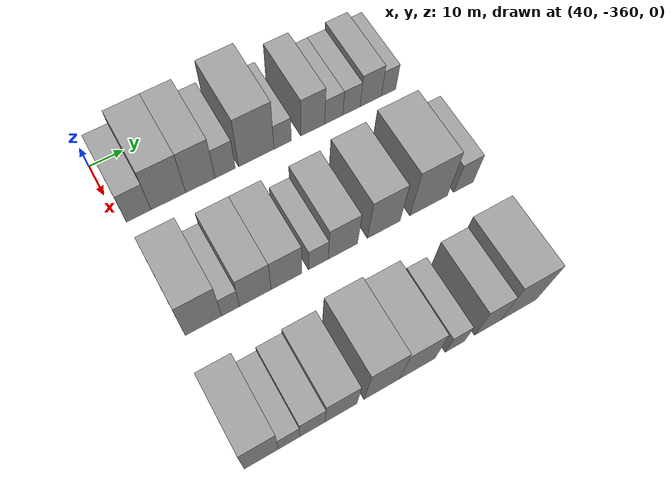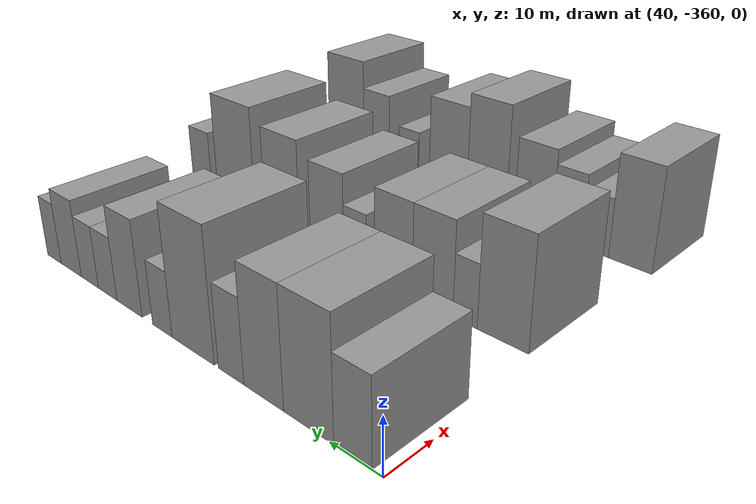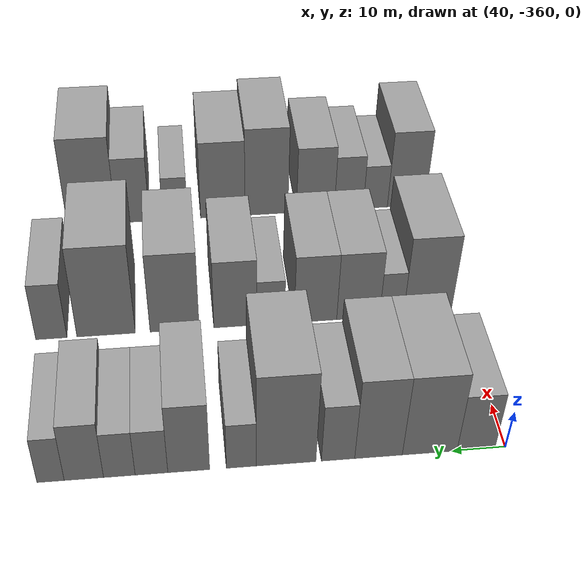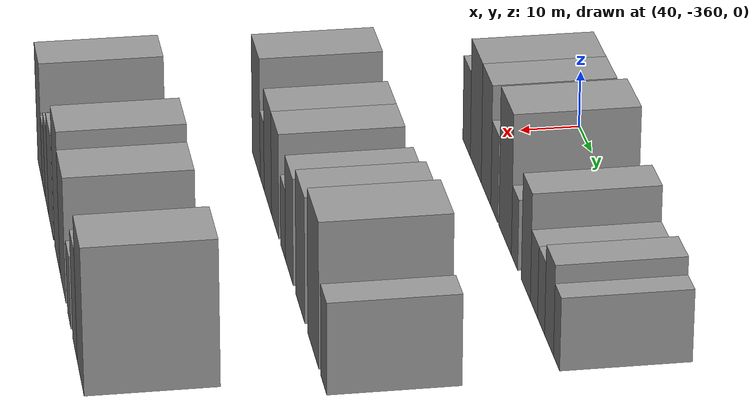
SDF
<sdf version="1.6">
 <world name="default">
  <model name="building_1">
   <static>1</static>
   <pose>50.0000 -354.4526 0 0.000000 0.000000 0.000000</pose>
   <link name="link">
    <pose>0 0 7.50 0 0 0</pose>
    <collision name="collision"><geometry><box><size>20.0000 7.0948 15.0000</size></box></geometry></collision>
    <visual name="visual">
     <cast_shadows>0</cast_shadows>
     <geometry><box><size>20.0000 7.0948 15.0000</size></box></geometry>
     <material>
      <script>
       <uri>model://grey_wall/materials/scripts</uri>
       <uri>model://grey_wall/materials/textures</uri>
       <name>vrc/grey_wall</name>
      </script>
     </material>
    </visual>
   </link>
  </model>
  <model name="building_2">
   <static>1</static>
   <pose>50.0000 -345.8358 0 0.000000 0.000000 0.000000</pose>
   <link name="link">
    <pose>0 0 10.50 0 0 0</pose>
    <collision name="collision"><geometry><box><size>20.0000 10.1390 21.0000</size></box></geometry></collision>
    <visual name="visual">
     <cast_shadows>0</cast_shadows>
     <geometry><box><size>20.0000 10.1390 21.0000</size></box></geometry>
     <material>
      <script>
       <uri>model://grey_wall/materials/scripts</uri>
       <uri>model://grey_wall/materials/textures</uri>
       <name>vrc/grey_wall</name>
      </script>
     </material>
    </visual>
   </link>
  </model>
  <model name="building_3">
   <static>1</static>
   <pose>50.0000 -336.3879 0 0.000000 0.000000 0.000000</pose>
   <link name="link">
    <pose>0 0 10.50 0 0 0</pose>
    <collision name="collision"><geometry><box><size>20.0000 8.7568 21.0000</size></box></geometry></collision>
    <visual name="visual">
     <cast_shadows>0</cast_shadows>
     <geometry><box><size>20.0000 8.7568 21.0000</size></box></geometry>
     <material>
      <script>
       <uri>model://grey_wall/materials/scripts</uri>
       <uri>model://grey_wall/materials/textures</uri>
       <name>vrc/grey_wall</name>
      </script>
     </material>
    </visual>
   </link>
  </model>
  <model name="building_4">
   <static>1</static>
   <pose>50.0000 -328.9606 0 0.000000 0.000000 0.000000</pose>
   <link name="link">
    <pose>0 0 7.50 0 0 0</pose>
    <collision name="collision"><geometry><box><size>20.0000 6.0978 15.0000</size></box></geometry></collision>
    <visual name="visual">
     <cast_shadows>0</cast_shadows>
     <geometry><box><size>20.0000 6.0978 15.0000</size></box></geometry>
     <material>
      <script>
       <uri>model://grey_wall/materials/scripts</uri>
       <uri>model://grey_wall/materials/textures</uri>
       <name>vrc/grey_wall</name>
      </script>
     </material>
    </visual>
   </link>
  </model>
  <model name="building_5">
   <static>1</static>
   <pose>50.0000 -319.4855 0 0.000000 0.000000 0.000000</pose>
   <link name="link">
    <pose>0 0 12.00 0 0 0</pose>
    <collision name="collision"><geometry><box><size>20.0000 10.8523 24.0000</size></box></geometry></collision>
    <visual name="visual">
     <cast_shadows>0</cast_shadows>
     <geometry><box><size>20.0000 10.8523 24.0000</size></box></geometry>
     <material>
      <script>
       <uri>model://grey_wall/materials/scripts</uri>
       <uri>model://grey_wall/materials/textures</uri>
       <name>vrc/grey_wall</name>
      </script>
     </material>
    </visual>
   </link>
  </model>
  <model name="building_6">
   <static>1</static>
   <pose>50.0000 -311.3605 0 0.000000 0.000000 0.000000</pose>
   <link name="link">
    <pose>0 0 6.00 0 0 0</pose>
    <collision name="collision"><geometry><box><size>20.0000 5.3977 12.0000</size></box></geometry></collision>
    <visual name="visual">
     <cast_shadows>0</cast_shadows>
     <geometry><box><size>20.0000 5.3977 12.0000</size></box></geometry>
     <material>
      <script>
       <uri>model://grey_wall/materials/scripts</uri>
       <uri>model://grey_wall/materials/textures</uri>
       <name>vrc/grey_wall</name>
      </script>
     </material>
    </visual>
   </link>
  </model>
  <model name="building_7">
   <static>1</static>
   <pose>50.0000 -301.9063 0 0.000000 0.000000 0.000000</pose>
   <link name="link">
    <pose>0 0 9.00 0 0 0</pose>
    <collision name="collision"><geometry><box><size>20.0000 7.5106 18.0000</size></box></geometry></collision>
    <visual name="visual">
     <cast_shadows>0</cast_shadows>
     <geometry><box><size>20.0000 7.5106 18.0000</size></box></geometry>
     <material>
      <script>
       <uri>model://grey_wall/materials/scripts</uri>
       <uri>model://grey_wall/materials/textures</uri>
       <name>vrc/grey_wall</name>
      </script>
     </material>
    </visual>
   </link>
  </model>
  <model name="building_8">
   <static>1</static>
   <pose>50.0000 -295.2323 0 0.000000 0.000000 0.000000</pose>
   <link name="link">
    <pose>0 0 6.00 0 0 0</pose>
    <collision name="collision"><geometry><box><size>20.0000 5.8375 12.0000</size></box></geometry></collision>
    <visual name="visual">
     <cast_shadows>0</cast_shadows>
     <geometry><box><size>20.0000 5.8375 12.0000</size></box></geometry>
     <material>
      <script>
       <uri>model://grey_wall/materials/scripts</uri>
       <uri>model://grey_wall/materials/textures</uri>
       <name>vrc/grey_wall</name>
      </script>
     </material>
    </visual>
   </link>
  </model>
  <model name="building_9">
   <static>1</static>
   <pose>50.0000 -289.4980 0 0.000000 0.000000 0.000000</pose>
   <link name="link">
    <pose>0 0 6.00 0 0 0</pose>
    <collision name="collision"><geometry><box><size>20.0000 5.6311 12.0000</size></box></geometry></collision>
    <visual name="visual">
     <cast_shadows>0</cast_shadows>
     <geometry><box><size>20.0000 5.6311 12.0000</size></box></geometry>
     <material>
      <script>
       <uri>model://grey_wall/materials/scripts</uri>
       <uri>model://grey_wall/materials/textures</uri>
       <name>vrc/grey_wall</name>
      </script>
     </material>
    </visual>
   </link>
  </model>
  <model name="building_10">
   <static>1</static>
   <pose>50.0000 -283.2031 0 0.000000 0.000000 0.000000</pose>
   <link name="link">
    <pose>0 0 7.50 0 0 0</pose>
    <collision name="collision"><geometry><box><size>20.0000 6.9587 15.0000</size></box></geometry></collision>
    <visual name="visual">
     <cast_shadows>0</cast_shadows>
     <geometry><box><size>20.0000 6.9587 15.0000</size></box></geometry>
     <material>
      <script>
       <uri>model://grey_wall/materials/scripts</uri>
       <uri>model://grey_wall/materials/textures</uri>
       <name>vrc/grey_wall</name>
      </script>
     </material>
    </visual>
   </link>
  </model>
  <model name="building_11">
   <static>1</static>
   <pose>50.0000 -277.3180 0 0.000000 0.000000 0.000000</pose>
   <link name="link">
    <pose>0 0 6.00 0 0 0</pose>
    <collision name="collision"><geometry><box><size>20.0000 4.8116 12.0000</size></box></geometry></collision>
    <visual name="visual">
     <cast_shadows>0</cast_shadows>
     <geometry><box><size>20.0000 4.8116 12.0000</size></box></geometry>
     <material>
      <script>
       <uri>model://grey_wall/materials/scripts</uri>
       <uri>model://grey_wall/materials/textures</uri>
       <name>vrc/grey_wall</name>
      </script>
     </material>
    </visual>
   </link>
  </model>
  <model name="building_84">
   <static>1</static>
   <pose>85.0000 -352.9696 0 0.000000 0.000000 0.000000</pose>
   <link name="link">
    <pose>0 0 10.50 0 0 0</pose>
    <collision name="collision"><geometry><box><size>20.0000 10.0607 21.0000</size></box></geometry></collision>
    <visual name="visual">
     <cast_shadows>0</cast_shadows>
     <geometry><box><size>20.0000 10.0607 21.0000</size></box></geometry>
     <material>
      <script>
       <uri>model://grey_wall/materials/scripts</uri>
       <uri>model://grey_wall/materials/textures</uri>
       <name>vrc/grey_wall</name>
      </script>
     </material>
    </visual>
   </link>
  </model>
  <model name="building_85">
   <static>1</static>
   <pose>85.0000 -345.4326 0 0.000000 0.000000 0.000000</pose>
   <link name="link">
    <pose>0 0 6.00 0 0 0</pose>
    <collision name="collision"><geometry><box><size>20.0000 5.0135 12.0000</size></box></geometry></collision>
    <visual name="visual">
     <cast_shadows>0</cast_shadows>
     <geometry><box><size>20.0000 5.0135 12.0000</size></box></geometry>
     <material>
      <script>
       <uri>model://grey_wall/materials/scripts</uri>
       <uri>model://grey_wall/materials/textures</uri>
       <name>vrc/grey_wall</name>
      </script>
     </material>
    </visual>
   </link>
  </model>
  <model name="building_86">
   <static>1</static>
   <pose>85.0000 -338.4584 0 0.000000 0.000000 0.000000</pose>
   <link name="link">
    <pose>0 0 9.00 0 0 0</pose>
    <collision name="collision"><geometry><box><size>20.0000 8.9349 18.0000</size></box></geometry></collision>
    <visual name="visual">
     <cast_shadows>0</cast_shadows>
     <geometry><box><size>20.0000 8.9349 18.0000</size></box></geometry>
     <material>
      <script>
       <uri>model://grey_wall/materials/scripts</uri>
       <uri>model://grey_wall/materials/textures</uri>
       <name>vrc/grey_wall</name>
      </script>
     </material>
    </visual>
   </link>
  </model>
  <model name="building_87">
   <static>1</static>
   <pose>85.0000 -329.5762 0 0.000000 0.000000 0.000000</pose>
   <link name="link">
    <pose>0 0 9.00 0 0 0</pose>
    <collision name="collision"><geometry><box><size>20.0000 8.8293 18.0000</size></box></geometry></collision>
    <visual name="visual">
     <cast_shadows>0</cast_shadows>
     <geometry><box><size>20.0000 8.8293 18.0000</size></box></geometry>
     <material>
      <script>
       <uri>model://grey_wall/materials/scripts</uri>
       <uri>model://grey_wall/materials/textures</uri>
       <name>vrc/grey_wall</name>
      </script>
     </material>
    </visual>
   </link>
  </model>
  <model name="building_88">
   <static>1</static>
   <pose>85.0000 -320.2946 0 0.000000 0.000000 0.000000</pose>
   <link name="link">
    <pose>0 0 6.00 0 0 0</pose>
    <collision name="collision"><geometry><box><size>20.0000 5.7340 12.0000</size></box></geometry></collision>
    <visual name="visual">
     <cast_shadows>0</cast_shadows>
     <geometry><box><size>20.0000 5.7340 12.0000</size></box></geometry>
     <material>
      <script>
       <uri>model://grey_wall/materials/scripts</uri>
       <uri>model://grey_wall/materials/textures</uri>
       <name>vrc/grey_wall</name>
      </script>
     </material>
    </visual>
   </link>
  </model>
  <model name="building_89">
   <static>1</static>
   <pose>85.0000 -313.0156 0 0.000000 0.000000 0.000000</pose>
   <link name="link">
    <pose>0 0 9.00 0 0 0</pose>
    <collision name="collision"><geometry><box><size>20.0000 8.8241 18.0000</size></box></geometry></collision>
    <visual name="visual">
     <cast_shadows>0</cast_shadows>
     <geometry><box><size>20.0000 8.8241 18.0000</size></box></geometry>
     <material>
      <script>
       <uri>model://grey_wall/materials/scripts</uri>
       <uri>model://grey_wall/materials/textures</uri>
       <name>vrc/grey_wall</name>
      </script>
     </material>
    </visual>
   </link>
  </model>
  <model name="building_90">
   <static>1</static>
   <pose>85.0000 -300.6014 0 0.000000 0.000000 0.000000</pose>
   <link name="link">
    <pose>0 0 10.50 0 0 0</pose>
    <collision name="collision"><geometry><box><size>20.0000 10.0043 21.0000</size></box></geometry></collision>
    <visual name="visual">
     <cast_shadows>0</cast_shadows>
     <geometry><box><size>20.0000 10.0043 21.0000</size></box></geometry>
     <material>
      <script>
       <uri>model://grey_wall/materials/scripts</uri>
       <uri>model://grey_wall/materials/textures</uri>
       <name>vrc/grey_wall</name>
      </script>
     </material>
    </visual>
   </link>
  </model>
  <model name="building_91">
   <static>1</static>
   <pose>85.0000 -286.6879 0 0.000000 0.000000 0.000000</pose>
   <link name="link">
    <pose>0 0 12.00 0 0 0</pose>
    <collision name="collision"><geometry><box><size>20.0000 11.8227 24.0000</size></box></geometry></collision>
    <visual name="visual">
     <cast_shadows>0</cast_shadows>
     <geometry><box><size>20.0000 11.8227 24.0000</size></box></geometry>
     <material>
      <script>
       <uri>model://grey_wall/materials/scripts</uri>
       <uri>model://grey_wall/materials/textures</uri>
       <name>vrc/grey_wall</name>
      </script>
     </material>
    </visual>
   </link>
  </model>
  <model name="building_92">
   <static>1</static>
   <pose>85.0000 -275.6431 0 0.000000 0.000000 0.000000</pose>
   <link name="link">
    <pose>0 0 7.50 0 0 0</pose>
    <collision name="collision"><geometry><box><size>20.0000 6.2668 15.0000</size></box></geometry></collision>
    <visual name="visual">
     <cast_shadows>0</cast_shadows>
     <geometry><box><size>20.0000 6.2668 15.0000</size></box></geometry>
     <material>
      <script>
       <uri>model://grey_wall/materials/scripts</uri>
       <uri>model://grey_wall/materials/textures</uri>
       <name>vrc/grey_wall</name>
      </script>
     </material>
    </visual>
   </link>
  </model>
  <model name="building_161">
   <static>1</static>
   <pose>120.0000 -355.5740 0 0.000000 0.000000 0.000000</pose>
   <link name="link">
    <pose>0 0 10.50 0 0 0</pose>
    <collision name="collision"><geometry><box><size>20.0000 8.8520 21.0000</size></box></geometry></collision>
    <visual name="visual">
     <cast_shadows>0</cast_shadows>
     <geometry><box><size>20.0000 8.8520 21.0000</size></box></geometry>
     <material>
      <script>
       <uri>model://grey_wall/materials/scripts</uri>
       <uri>model://grey_wall/materials/textures</uri>
       <name>vrc/grey_wall</name>
      </script>
     </material>
    </visual>
   </link>
  </model>
  <model name="building_162">
   <static>1</static>
   <pose>120.0000 -348.3107 0 0.000000 0.000000 0.000000</pose>
   <link name="link">
    <pose>0 0 6.00 0 0 0</pose>
    <collision name="collision"><geometry><box><size>20.0000 5.6745 12.0000</size></box></geometry></collision>
    <visual name="visual">
     <cast_shadows>0</cast_shadows>
     <geometry><box><size>20.0000 5.6745 12.0000</size></box></geometry>
     <material>
      <script>
       <uri>model://grey_wall/materials/scripts</uri>
       <uri>model://grey_wall/materials/textures</uri>
       <name>vrc/grey_wall</name>
      </script>
     </material>
    </visual>
   </link>
  </model>
  <model name="building_163">
   <static>1</static>
   <pose>120.0000 -342.1021 0 0.000000 0.000000 0.000000</pose>
   <link name="link">
    <pose>0 0 7.50 0 0 0</pose>
    <collision name="collision"><geometry><box><size>20.0000 6.7426 15.0000</size></box></geometry></collision>
    <visual name="visual">
     <cast_shadows>0</cast_shadows>
     <geometry><box><size>20.0000 6.7426 15.0000</size></box></geometry>
     <material>
      <script>
       <uri>model://grey_wall/materials/scripts</uri>
       <uri>model://grey_wall/materials/textures</uri>
       <name>vrc/grey_wall</name>
      </script>
     </material>
    </visual>
   </link>
  </model>
  <model name="building_164">
   <static>1</static>
   <pose>120.0000 -334.3185 0 0.000000 0.000000 0.000000</pose>
   <link name="link">
    <pose>0 0 9.00 0 0 0</pose>
    <collision name="collision"><geometry><box><size>20.0000 8.8245 18.0000</size></box></geometry></collision>
    <visual name="visual">
     <cast_shadows>0</cast_shadows>
     <geometry><box><size>20.0000 8.8245 18.0000</size></box></geometry>
     <material>
      <script>
       <uri>model://grey_wall/materials/scripts</uri>
       <uri>model://grey_wall/materials/textures</uri>
       <name>vrc/grey_wall</name>
      </script>
     </material>
    </visual>
   </link>
  </model>
  <model name="building_165">
   <static>1</static>
   <pose>120.0000 -322.9390 0 0.000000 0.000000 0.000000</pose>
   <link name="link">
    <pose>0 0 12.00 0 0 0</pose>
    <collision name="collision"><geometry><box><size>20.0000 9.9346 24.0000</size></box></geometry></collision>
    <visual name="visual">
     <cast_shadows>0</cast_shadows>
     <geometry><box><size>20.0000 9.9346 24.0000</size></box></geometry>
     <material>
      <script>
       <uri>model://grey_wall/materials/scripts</uri>
       <uri>model://grey_wall/materials/textures</uri>
       <name>vrc/grey_wall</name>
      </script>
     </material>
    </visual>
   </link>
  </model>
  <model name="building_166">
   <static>1</static>
   <pose>120.0000 -312.8669 0 0.000000 0.000000 0.000000</pose>
   <link name="link">
    <pose>0 0 10.50 0 0 0</pose>
    <collision name="collision"><geometry><box><size>20.0000 10.2096 21.0000</size></box></geometry></collision>
    <visual name="visual">
     <cast_shadows>0</cast_shadows>
     <geometry><box><size>20.0000 10.2096 21.0000</size></box></geometry>
     <material>
      <script>
       <uri>model://grey_wall/materials/scripts</uri>
       <uri>model://grey_wall/materials/textures</uri>
       <name>vrc/grey_wall</name>
      </script>
     </material>
    </visual>
   </link>
  </model>
  <model name="building_167">
   <static>1</static>
   <pose>120.0000 -301.9362 0 0.000000 0.000000 0.000000</pose>
   <link name="link">
    <pose>0 0 6.00 0 0 0</pose>
    <collision name="collision"><geometry><box><size>20.0000 5.6518 12.0000</size></box></geometry></collision>
    <visual name="visual">
     <cast_shadows>0</cast_shadows>
     <geometry><box><size>20.0000 5.6518 12.0000</size></box></geometry>
     <material>
      <script>
       <uri>model://grey_wall/materials/scripts</uri>
       <uri>model://grey_wall/materials/textures</uri>
       <name>vrc/grey_wall</name>
      </script>
     </material>
    </visual>
   </link>
  </model>
  <model name="building_168">
   <static>1</static>
   <pose>120.0000 -292.2878 0 0.000000 0.000000 0.000000</pose>
   <link name="link">
    <pose>0 0 9.00 0 0 0</pose>
    <collision name="collision"><geometry><box><size>20.0000 7.6451 18.0000</size></box></geometry></collision>
    <visual name="visual">
     <cast_shadows>0</cast_shadows>
     <geometry><box><size>20.0000 7.6451 18.0000</size></box></geometry>
     <material>
      <script>
       <uri>model://grey_wall/materials/scripts</uri>
       <uri>model://grey_wall/materials/textures</uri>
       <name>vrc/grey_wall</name>
      </script>
     </material>
    </visual>
   </link>
  </model>
  <model name="building_169">
   <static>1</static>
   <pose>120.0000 -282.9380 0 0.000000 0.000000 0.000000</pose>
   <link name="link">
    <pose>0 0 12.00 0 0 0</pose>
    <collision name="collision"><geometry><box><size>20.0000 11.0545 24.0000</size></box></geometry></collision>
    <visual name="visual">
     <cast_shadows>0</cast_shadows>
     <geometry><box><size>20.0000 11.0545 24.0000</size></box></geometry>
     <material>
      <script>
       <uri>model://grey_wall/materials/scripts</uri>
       <uri>model://grey_wall/materials/textures</uri>
       <name>vrc/grey_wall</name>
      </script>
     </material>
    </visual>
   </link>
  </model>
 </world>
</sdf>
